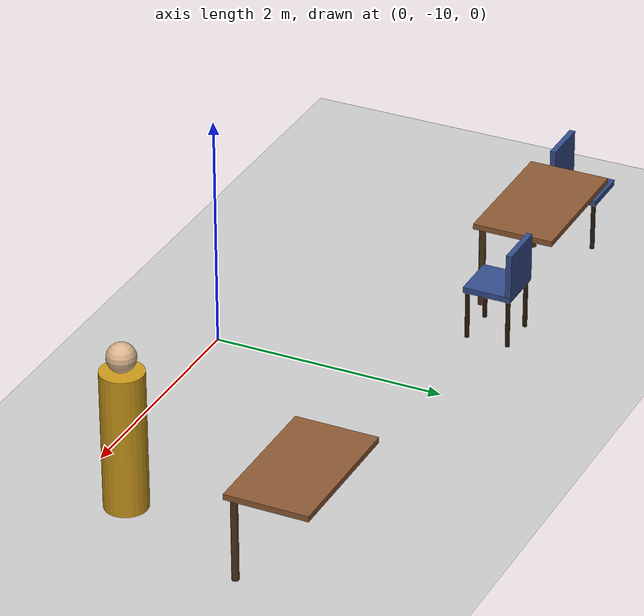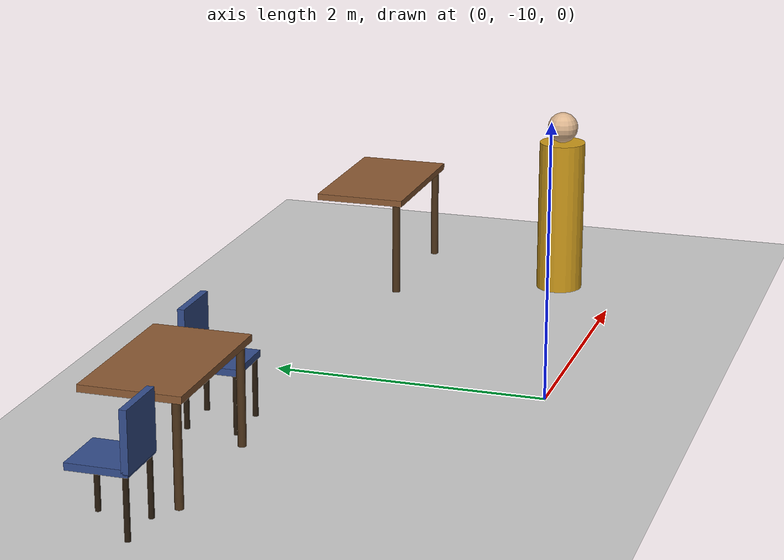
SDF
<sdf version="1.6">
 <world name="office_world">
  <include><uri>model://sun</uri></include>
  <include><uri>model://ground_plane</uri></include>
  <model name="table_5_top">
   <static>true</static>
   <pose>-2 -8 0.75 0 0 0.0</pose>
   <link name="link">
    <collision name="collision"><geometry><box><size>1.2 0.7 0.05</size></box></geometry></collision>
    <visual name="visual">
     <geometry><box><size>1.2 0.7 0.05</size></box></geometry>
     <material><ambient>0.55 0.35 0.2 1</ambient><diffuse>0.55 0.35 0.2 1</diffuse></material>
    </visual>
   </link>
  </model>
  <model name="table_5_leg_-1_-1">
   <static>true</static>
   <pose>-2.54 -8.29 0.3625 0 0 0</pose>
   <link name="link">
    <collision name="collision">
     <geometry><cylinder><radius>0.03</radius><length>0.725</length></cylinder></geometry>
    </collision>
    <visual name="visual">
     <geometry><cylinder><radius>0.03</radius><length>0.725</length></cylinder></geometry>
     <material><ambient>0.3 0.2 0.1 1</ambient><diffuse>0.3 0.2 0.1 1</diffuse></material>
    </visual>
   </link>
  </model>
  <model name="table_5_leg_1_-1">
   <static>true</static>
   <pose>-1.46 -8.29 0.3625 0 0 0</pose>
   <link name="link">
    <collision name="collision">
     <geometry><cylinder><radius>0.03</radius><length>0.725</length></cylinder></geometry>
    </collision>
    <visual name="visual">
     <geometry><cylinder><radius>0.03</radius><length>0.725</length></cylinder></geometry>
     <material><ambient>0.3 0.2 0.1 1</ambient><diffuse>0.3 0.2 0.1 1</diffuse></material>
    </visual>
   </link>
  </model>
  <model name="chair_8_seat">
   <static>true</static>
   <pose>-2.9 -8 0.45 0 0 1.5708</pose>
   <link name="link">
    <collision name="collision"><geometry><box><size>0.42 0.42 0.05</size></box></geometry></collision>
    <visual name="visual">
     <geometry><box><size>0.42 0.42 0.05</size></box></geometry>
     <material><ambient>0.2 0.3 0.55 1</ambient><diffuse>0.2 0.3 0.55 1</diffuse></material>
    </visual>
   </link>
  </model>
  <model name="chair_8_back">
   <static>true</static>
   <pose>-2.89999930209103 -8.189999999998719 0.65 0 0 1.5708</pose>
   <link name="link">
    <collision name="collision"><geometry><box><size>0.05 0.42 0.42</size></box></geometry></collision>
    <visual name="visual">
     <geometry><box><size>0.05 0.42 0.42</size></box></geometry>
     <material><ambient>0.2 0.3 0.55 1</ambient><diffuse>0.2 0.3 0.55 1</diffuse></material>
    </visual>
   </link>
  </model>
  <model name="chair_8_leg_-1_-1">
   <static>true</static>
   <pose>-2.719999338824296 -8.179999338821867 0.225 0 0 0</pose>
   <link name="link">
    <collision name="collision">
     <geometry><cylinder><radius>0.02</radius><length>0.45</length></cylinder></geometry>
    </collision>
    <visual name="visual">
     <geometry><cylinder><radius>0.02</radius><length>0.45</length></cylinder></geometry>
     <material><ambient>0.15 0.1 0.05 1</ambient><diffuse>0.15 0.1 0.05 1</diffuse></material>
    </visual>
   </link>
  </model>
  <model name="chair_8_leg_-1_1">
   <static>true</static>
   <pose>-3.079999338821867 -8.180000661175706 0.225 0 0 0</pose>
   <link name="link">
    <collision name="collision">
     <geometry><cylinder><radius>0.02</radius><length>0.45</length></cylinder></geometry>
    </collision>
    <visual name="visual">
     <geometry><cylinder><radius>0.02</radius><length>0.45</length></cylinder></geometry>
     <material><ambient>0.15 0.1 0.05 1</ambient><diffuse>0.15 0.1 0.05 1</diffuse></material>
    </visual>
   </link>
  </model>
  <model name="chair_8_leg_1_-1">
   <static>true</static>
   <pose>-2.720000661178133 -7.819999338824296 0.225 0 0 0</pose>
   <link name="link">
    <collision name="collision">
     <geometry><cylinder><radius>0.02</radius><length>0.45</length></cylinder></geometry>
    </collision>
    <visual name="visual">
     <geometry><cylinder><radius>0.02</radius><length>0.45</length></cylinder></geometry>
     <material><ambient>0.15 0.1 0.05 1</ambient><diffuse>0.15 0.1 0.05 1</diffuse></material>
    </visual>
   </link>
  </model>
  <model name="chair_9_seat">
   <static>true</static>
   <pose>-1.1 -8 0.45 0 0 -1.5708</pose>
   <link name="link">
    <collision name="collision"><geometry><box><size>0.42 0.42 0.05</size></box></geometry></collision>
    <visual name="visual">
     <geometry><box><size>0.42 0.42 0.05</size></box></geometry>
     <material><ambient>0.2 0.3 0.55 1</ambient><diffuse>0.2 0.3 0.55 1</diffuse></material>
    </visual>
   </link>
  </model>
  <model name="chair_9_back">
   <static>true</static>
   <pose>-1.0999993020910304 -7.810000000001282 0.65 0 0 -1.5708</pose>
   <link name="link">
    <collision name="collision"><geometry><box><size>0.05 0.42 0.42</size></box></geometry></collision>
    <visual name="visual">
     <geometry><box><size>0.05 0.42 0.42</size></box></geometry>
     <material><ambient>0.2 0.3 0.55 1</ambient><diffuse>0.2 0.3 0.55 1</diffuse></material>
    </visual>
   </link>
  </model>
  <model name="chair_9_leg_-1_-1">
   <static>true</static>
   <pose>-1.2799993388218671 -7.819999338824296 0.225 0 0 0</pose>
   <link name="link">
    <collision name="collision">
     <geometry><cylinder><radius>0.02</radius><length>0.45</length></cylinder></geometry>
    </collision>
    <visual name="visual">
     <geometry><cylinder><radius>0.02</radius><length>0.45</length></cylinder></geometry>
     <material><ambient>0.15 0.1 0.05 1</ambient><diffuse>0.15 0.1 0.05 1</diffuse></material>
    </visual>
   </link>
  </model>
  <model name="chair_9_leg_-1_1">
   <static>true</static>
   <pose>-0.9199993388242959 -7.820000661178133 0.225 0 0 0</pose>
   <link name="link">
    <collision name="collision">
     <geometry><cylinder><radius>0.02</radius><length>0.45</length></cylinder></geometry>
    </collision>
    <visual name="visual">
     <geometry><cylinder><radius>0.02</radius><length>0.45</length></cylinder></geometry>
     <material><ambient>0.15 0.1 0.05 1</ambient><diffuse>0.15 0.1 0.05 1</diffuse></material>
    </visual>
   </link>
  </model>
  <model name="chair_9_leg_1_-1">
   <static>true</static>
   <pose>-1.2800006611757042 -8.179999338821867 0.225 0 0 0</pose>
   <link name="link">
    <collision name="collision">
     <geometry><cylinder><radius>0.02</radius><length>0.45</length></cylinder></geometry>
    </collision>
    <visual name="visual">
     <geometry><cylinder><radius>0.02</radius><length>0.45</length></cylinder></geometry>
     <material><ambient>0.15 0.1 0.05 1</ambient><diffuse>0.15 0.1 0.05 1</diffuse></material>
    </visual>
   </link>
  </model>
  <model name="chair_9_leg_1_1">
   <static>true</static>
   <pose>-0.920000661178133 -8.180000661175706 0.225 0 0 0</pose>
   <link name="link">
    <collision name="collision">
     <geometry><cylinder><radius>0.02</radius><length>0.45</length></cylinder></geometry>
    </collision>
    <visual name="visual">
     <geometry><cylinder><radius>0.02</radius><length>0.45</length></cylinder></geometry>
     <material><ambient>0.15 0.1 0.05 1</ambient><diffuse>0.15 0.1 0.05 1</diffuse></material>
    </visual>
   </link>
  </model>
  <model name="table_6_top">
   <static>true</static>
   <pose>2.5 -8 0.75 0 0 0.0</pose>
   <link name="link">
    <collision name="collision"><geometry><box><size>1.2 0.7 0.05</size></box></geometry></collision>
    <visual name="visual">
     <geometry><box><size>1.2 0.7 0.05</size></box></geometry>
     <material><ambient>0.55 0.35 0.2 1</ambient><diffuse>0.55 0.35 0.2 1</diffuse></material>
    </visual>
   </link>
  </model>
  <model name="table_6_leg_-1_-1">
   <static>true</static>
   <pose>1.96 -8.29 0.3625 0 0 0</pose>
   <link name="link">
    <collision name="collision">
     <geometry><cylinder><radius>0.03</radius><length>0.725</length></cylinder></geometry>
    </collision>
    <visual name="visual">
     <geometry><cylinder><radius>0.03</radius><length>0.725</length></cylinder></geometry>
     <material><ambient>0.3 0.2 0.1 1</ambient><diffuse>0.3 0.2 0.1 1</diffuse></material>
    </visual>
   </link>
  </model>
  <model name="table_6_leg_1_-1">
   <static>true</static>
   <pose>3.04 -8.29 0.3625 0 0 0</pose>
   <link name="link">
    <collision name="collision">
     <geometry><cylinder><radius>0.03</radius><length>0.725</length></cylinder></geometry>
    </collision>
    <visual name="visual">
     <geometry><cylinder><radius>0.03</radius><length>0.725</length></cylinder></geometry>
     <material><ambient>0.3 0.2 0.1 1</ambient><diffuse>0.3 0.2 0.1 1</diffuse></material>
    </visual>
   </link>
  </model>
  <model name="person_3_body">
   <static>true</static>
   <pose>2.5 -9.5 0.6 0 0 0</pose>
   <link name="link">
    <collision name="collision">
     <geometry><cylinder><radius>0.18</radius><length>1.2</length></cylinder></geometry>
    </collision>
    <visual name="visual">
     <geometry><cylinder><radius>0.18</radius><length>1.2</length></cylinder></geometry>
     <material><ambient>0.8 0.6 0.1 1</ambient><diffuse>0.8 0.6 0.1 1</diffuse></material>
    </visual>
   </link>
  </model>
  <model name="person_3_head">
   <static>true</static>
   <pose>2.5 -9.5 1.3199999999999998 0 0 0</pose>
   <link name="link">
    <collision name="collision"><geometry><sphere><radius>0.12</radius></sphere></geometry></collision>
    <visual name="visual">
     <geometry><sphere><radius>0.12</radius></sphere></geometry>
     <material><ambient>0.85 0.7 0.55 1</ambient><diffuse>0.85 0.7 0.55 1</diffuse></material>
    </visual>
   </link>
  </model>
 </world>
</sdf>
